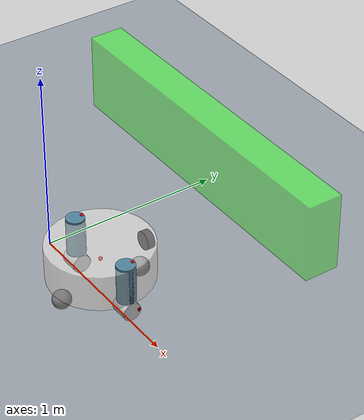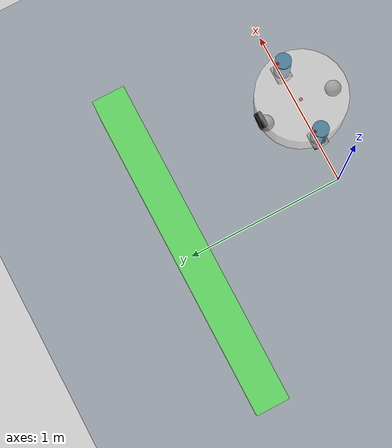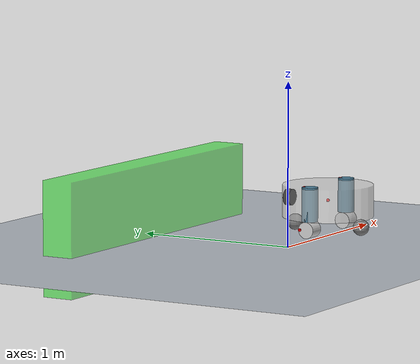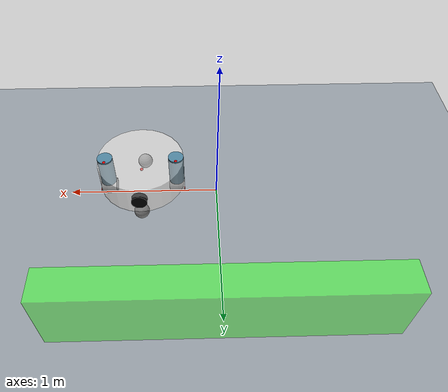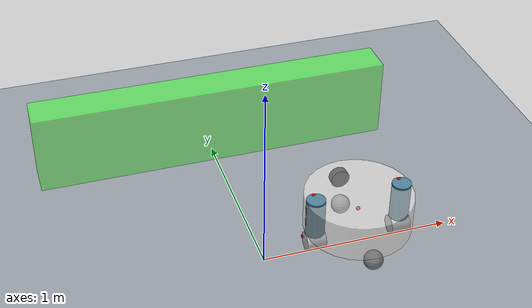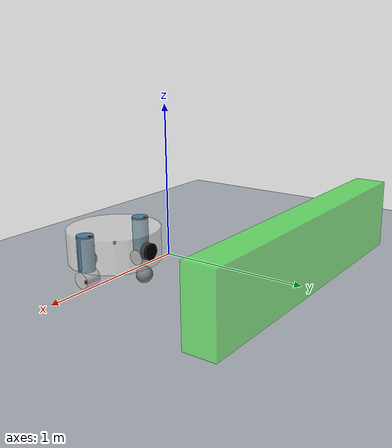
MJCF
<mujoco model="diffmobile scene">
    <include file="../mjcf/omni_diff_mobile.xml" />
    <option timestep="0.001" gravity="0 0 -9.80665" />
    <statistic center="0.3 0 0.4" extent="1" />
    <visual>
        <headlight diffuse="0.6 0.6 0.6" ambient="0.3 0.3 0.3" specular="0 0 0" />
        <rgba haze="0.15 0.25 0.35 1" />
        <global azimuth="120" elevation="-20" />
    </visual>

    <asset>
        <texture type="skybox" builtin="gradient" rgb1="0.3 0.5 0.7" rgb2="0 0 0" width="512" height="3072" />
        <texture type="2d" name="groundplane" builtin="checker" mark="edge" rgb1="0.2 0.3 0.4" rgb2="0.1 0.2 0.3" markrgb="0.8 0.8 0.8" width="300" height="300" />
        <material name="groundplane" texture="groundplane" texuniform="true" texrepeat="5 5" reflectance="0.2" />
    </asset>

    <worldbody>
        <light pos="0 0 1.5" dir="0 0 -1" directional="true" />
        <geom name="floor" size="0 0 0.05" type="plane" material="groundplane" />
        <body pos="0 1 0.1">
            <geom type="box" size="1 .1 0.35" rgba="0 .9 0 0.5" />
        </body>
    </worldbody>
</mujoco>

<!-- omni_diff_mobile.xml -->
<mujoco model="diffmobile">
  <compiler angle="radian"/>
  <option gravity="0 0 -1"/>

  <worldbody>

    <body name="robot_base" pos="0.5 0 0.22">
      <freejoint/>
      <geom name="chassis" type="cylinder" size="0.28 0.1" rgba="0.8 0.8 0.8 0.5" density="15"/>
      <site name="chassis_site" rgba="1 0 0 1" size="0.01" />
      <geom type="cylinder" size="0.05" fromto="0 0.25 0 0 0.29 0" rgba="0.0 0.0 0.0 1.0" mass=".1"/>
      <body pos="0 0.23 0.2">
        <camera name="front_cam" mode="fixed" euler="1.5708 0 3.1416" fovy="100"/>
      </body>
      <body pos="0 0.23 -0.15">
        <joint type="ball" pos="0 0 0"/>
        <geom type="sphere" size="0.05" mass="2"/>
      </body>
      <body pos="0 -0.23 -0.15">
        <joint type="ball" pos="0 0 0"/>
        <geom type="sphere" size="0.05" mass="2"/>
      </body>

      <body pos="0 0 0">
        <joint name="leftWheelOmni" type="hinge" pos ="-0.23 0 0" axis="0 0 -1" range="-6.14159 6.14159"/>
        <geom type="cylinder" size="0.05" fromto="-0.23 0 0.11 -0.23 0 -0.1" rgba="0.3 0.5 0.6 1.0" mass="2"/>
        <geom type="cylinder" size="0.01" fromto="-0.23 0.04 0.111 -0.23 0.04 0.11" rgba="0.8 0.0 0.0 1.0" density=".1"/>
        <body pos="0 0 -0.15">
          <joint name="leftWheel" type="hinge" pos ="0 0 0" axis="-1 0 0"/>
          <geom type="cylinder" size="0.05" fromto="-0.18 0 0 -0.28 0 0" rgba="0.8 0.8 0.8 1.0" mass="2"/>
          <geom type="cylinder" size="0.01" fromto="-0.28 0.04 0 -0.283 0.04 0" rgba="0.8 0.0 0.0 1.0" density=".1"/>
        </body>
      </body>

      <body pos="0 0 0">
        <joint name="rightWheelOmni" type="hinge" pos ="0.23 0 0" axis="0 0 -1"/>
        <geom type="cylinder" size="0.05" fromto="0.23 0 0.11 0.23 0 -0.1" rgba="0.3 0.5 0.6 1.0" mass="2"/>
        <geom type="cylinder" size="0.01" fromto="0.23 0.04 0.111 0.23 0.04 0.11" rgba="0.8 0.0 0.0 1.0" density=".1"/>
        <body pos="0 0 -0.15">
          <joint name="rightWheel" type="hinge" pos="0 0 0" axis="-1 0 0"/>
          <geom type="cylinder" size="0.05" fromto="0.18 0 0 0.28 0 0" rgba="0.8 0.8 0.8 1.0" mass="2"/>
          <geom type="cylinder" size="0.01" fromto="0.28 0.04 0 0.283 0.04 0" rgba="0.8 0.0 0.0 1.0" density=".1"/>
        </body>
      </body>
    </body>
  </worldbody>

  <actuator>
    <velocity name="left_wheel" joint="leftWheel" kv ="5"/>
    <velocity name="right_wheel" joint="rightWheel" kv ="5"/>
    <position name="leftWheelOmni" joint="leftWheelOmni" kp="8" kv="1" ctrlrange="-1.57 1.57"/>
    <position name="rightWheelOmni" joint="rightWheelOmni" kp="8" kv="1" ctrlrange="-1.57 1.57"/>
  </actuator>
  <sensor>
    <framepos name="chassisPos" objtype="site" objname="chassis_site"/>
    <framequat name="chassisQuat" objtype="site" objname="chassis_site"/>
    <framelinvel name="chassisLinVel" objtype="site" objname="chassis_site"/>
    <frameangvel name="chassisAngVel" objtype="site" objname="chassis_site"/>
    <gyro name="chassisGyro" site="chassis_site"/>
    <accelerometer name="chassisAcc" site="chassis_site"/>
  </sensor>
</mujoco>
